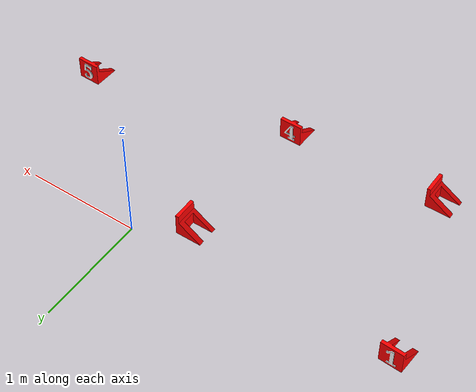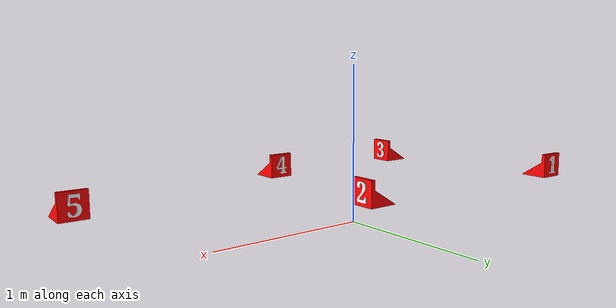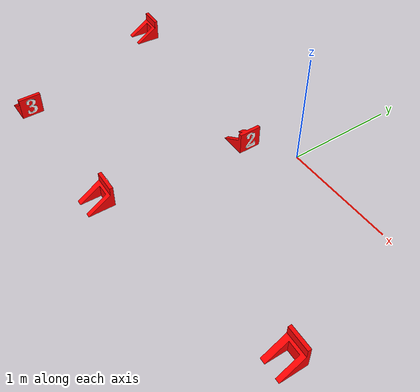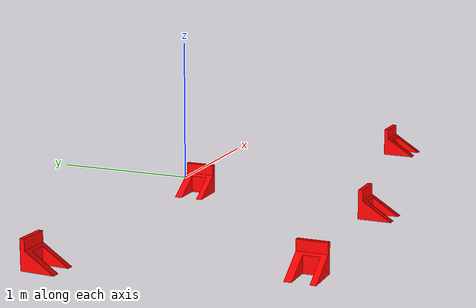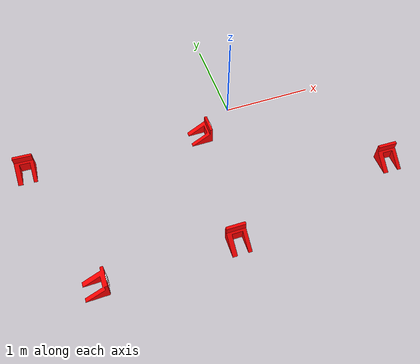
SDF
<?xml version='1.0'?>
<sdf version='1.6'>
  <model name='Untitled'>
    <model name='building_curve'>
      <static>1</static>
      <link name='curve1'>
        <visual name='visual'>
          <geometry>
            <mesh>
              <uri>model://cookobot_gazebo/models/table_number_two/two/two.dae</uri>
            </mesh>
          </geometry>
        </visual>
        <collision name='collision'>
          <geometry>
            <mesh>
              <uri>model://cookobot_gazebo/models/table_number_two/two/two.dae</uri>
            </mesh>
          </geometry>
          <max_contacts>10</max_contacts>
          <surface>
            <contact>
              <ode/>
            </contact>
            <bounce/>
            <friction>
              <torsional>
                <ode/>
              </torsional>
              <ode/>
            </friction>
          </surface>
        </collision>
        <self_collide>0</self_collide>
        <enable_wind>0</enable_wind>
        <kinematic>0</kinematic>
      </link>
      <pose frame=''>-0.289779 -0.168473 0 0 -0 0</pose>
    </model>
    <model name='building_curve_0'>
      <static>1</static>
      <link name='curve1'>
        <visual name='visual'>
          <geometry>
            <mesh>
              <uri>model://cookobot_gazebo/models/table_number_three/three/three.dae</uri>
            </mesh>
          </geometry>
        </visual>
        <collision name='collision'>
          <geometry>
            <mesh>
              <uri>model://cookobot_gazebo/models/table_number_three/three/three.dae</uri>
            </mesh>
          </geometry>
          <max_contacts>10</max_contacts>
          <surface>
            <contact>
              <ode/>
            </contact>
            <bounce/>
            <friction>
              <torsional>
                <ode/>
              </torsional>
              <ode/>
            </friction>
          </surface>
        </collision>
        <self_collide>0</self_collide>
        <enable_wind>0</enable_wind>
        <kinematic>0</kinematic>
      </link>
      <pose frame=''>-1.74748 -1.5334 0 0 0 -1e-06</pose>
    </model>
    <model name='building_curve_1'>
      <static>1</static>
      <link name='curve1'>
        <visual name='visual'>
          <geometry>
            <mesh>
              <uri>model://cookobot_gazebo/models/table_number_four/four/four.dae</uri>
            </mesh>
          </geometry>
        </visual>
        <collision name='collision'>
          <geometry>
            <mesh>
              <uri>model://cookobot_gazebo/models/table_number_four/four/four.dae</uri>
            </mesh>
          </geometry>
          <max_contacts>10</max_contacts>
          <surface>
            <contact>
              <ode/>
            </contact>
            <bounce/>
            <friction>
              <torsional>
                <ode/>
              </torsional>
              <ode/>
            </friction>
          </surface>
        </collision>
        <self_collide>0</self_collide>
        <enable_wind>0</enable_wind>
        <kinematic>0</kinematic>
      </link>
      <pose frame=''>-0.584599 -1.50368 0 0 -0 1.55708</pose>
    </model>
    <model name='building_curve_2'>
      <static>1</static>
      <link name='curve1'>
        <visual name='visual'>
          <geometry>
            <mesh>
              <uri>model://cookobot_gazebo/models/table_number_five/five/five.dae</uri>
            </mesh>
          </geometry>
        </visual>
        <collision name='collision'>
          <geometry>
            <mesh>
              <uri>model://cookobot_gazebo/models/table_number_five/five/five.dae</uri>
            </mesh>
          </geometry>
          <max_contacts>10</max_contacts>
          <surface>
            <contact>
              <ode/>
            </contact>
            <bounce/>
            <friction>
              <torsional>
                <ode/>
              </torsional>
              <ode/>
            </friction>
          </surface>
        </collision>
        <self_collide>0</self_collide>
        <enable_wind>0</enable_wind>
        <kinematic>0</kinematic>
      </link>
      <pose frame=''>1.27552 -1.12099 0 0 -0 1.54325</pose>
    </model>
    <model name='building_curve_3'>
      <static>1</static>
      <link name='curve1'>
        <visual name='visual'>
          <geometry>
            <mesh>
              <uri>model://table_number/numbers/one.dae</uri>
            </mesh>
          </geometry>
        </visual>
        <collision name='collision'>
          <geometry>
            <mesh>
              <uri>model://table_number/numbers/one.dae</uri>
            </mesh>
          </geometry>
        </collision>
      </link>
      <pose frame=''>-2.40789 -0.01977 -0 0 -0 1.51855</pose>
    </model>
    <static>0</static>
    <allow_auto_disable>1</allow_auto_disable>
  </model>
</sdf>
